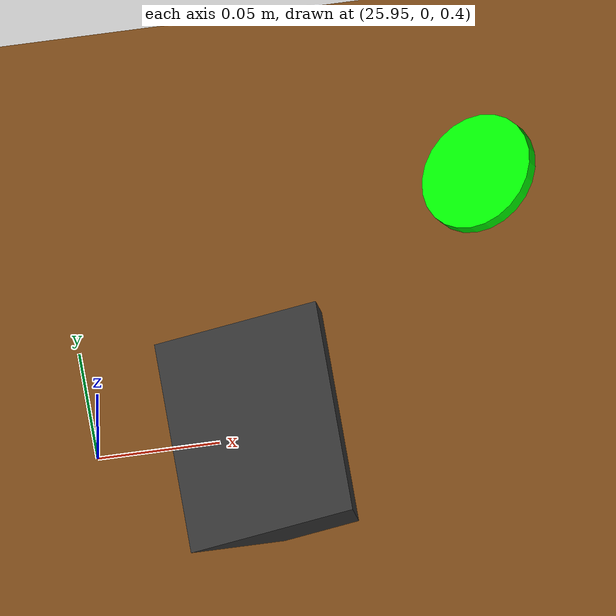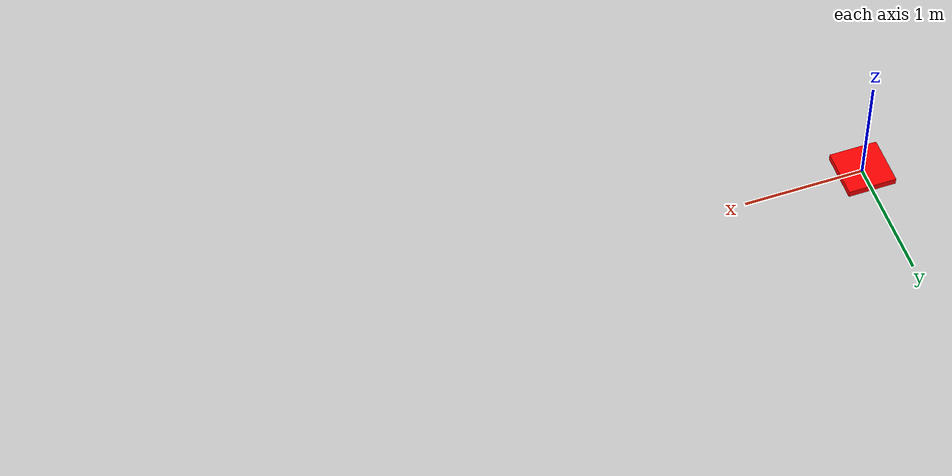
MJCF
<mujoco model="place">
    <!--option timestep="0.002" gravity="0 0 -9.81" integrator="implicitfast"
        density="1.225" viscosity="1.8e-5"/-->
    <asset>
        <material name="mat_red" rgba="1 0 0 1"/>
        <material name="mat_green" rgba="0 1 0 1" emission="0.8"/>
        <material name="mat_white" rgba="1 1 1 1"/>
    </asset>

    <worldbody>
        <!-- 地平面 -->
        <geom name="floor" type="plane" size="100 100 0.1" rgba="0.8 0.8 0.8 1"/>

        <!-- 起始点：红色立方体（正方形） -->
        <!-- 高度0.1m，边长0.4m -->
        <body name="missile_shelf" pos="0 0 0">
            <geom type="box" size="0.2 0.2 0.05" material="mat_red"/>
        </body>

        <!-- 指示线（水平白线） -->
        <body name="direction_line"
            pos="13 0 -0.5"
            euler="0 90 0">   <!-- 绕Y轴旋转90°，圆柱水平沿X -->
            <geom type="cylinder" size="0.01 13" material="mat_white"/>
        </body>

        <!-- 基地 -->
        <body name="base" pos="26 0 0.2">
            <!-- 基地装甲板 -->
            <geom type="box" size="0.2 0.2 0.2" rgba="0.5 0.3 0.1 1"/>

            <!-- 倾斜目标 -->
            <body name="base_armor" pos="0 0 0.2" euler="0 -15 0">
                <geom type="box" size="0.05 0.05 0.005" rgba="0.2 0.2 0.2 1"/>

                <!-- 基地灯（后方0.05m，上方0.05m） -->
                <body name="base_light" pos="0.15 0 0.15" euler="0 -15 0">
                    <geom type="cylinder" size="0.025 0.0025" material="mat_green"/>
                </body>
            </body>
        </body>

    </worldbody>
</mujoco>
